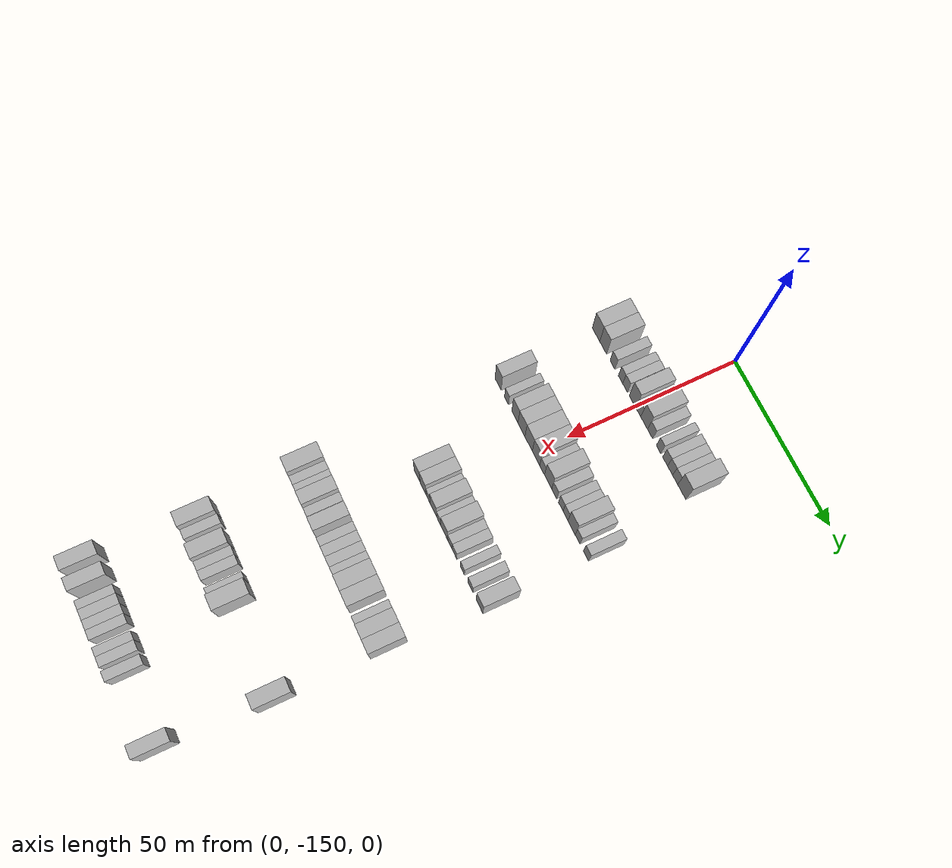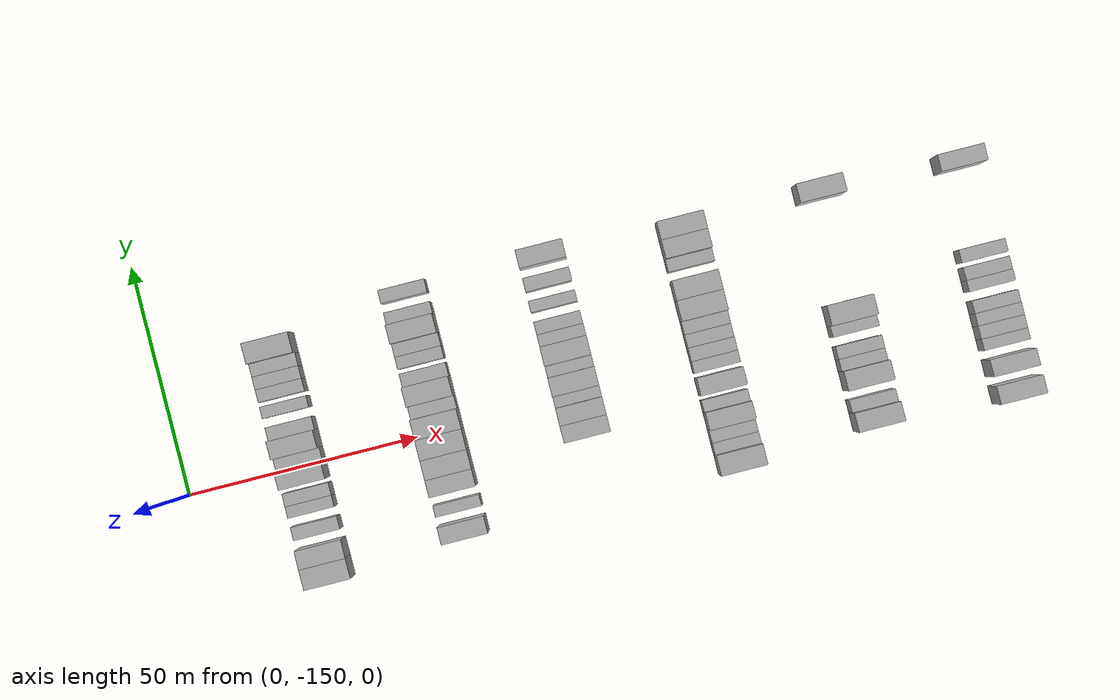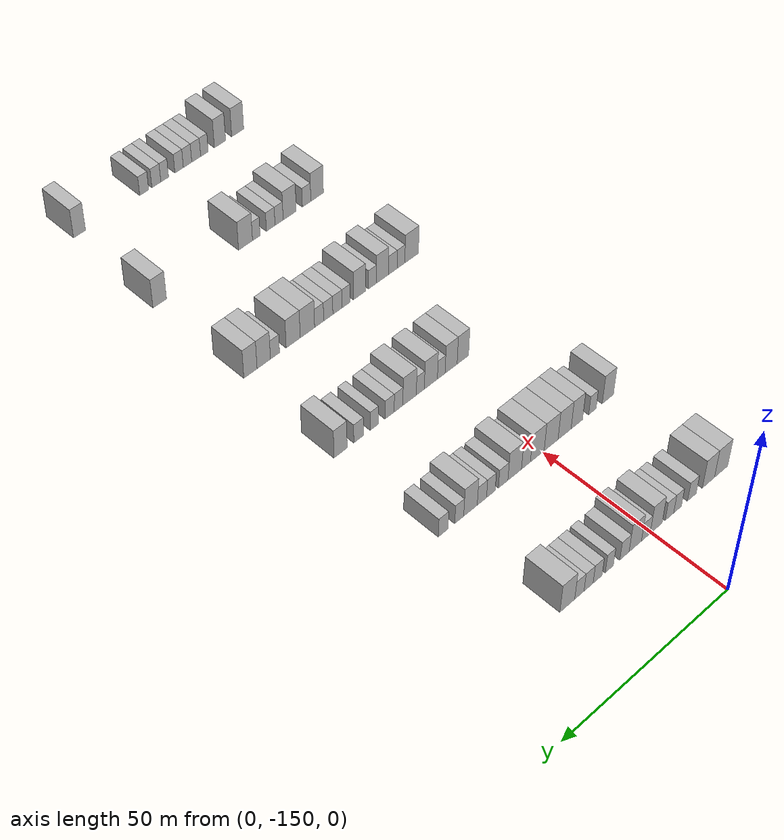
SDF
<sdf version="1.6">
 <world name="default">
  <model name="building_73">
   <static>1</static>
   <pose>25.0000 -172.6880 0 0.000000 0.000000 0.000000</pose>
   <link name="link">
    <pose>0 0 4.50 0 0 0</pose>
    <collision name="collision"><geometry><box><size>10.0000 4.4038 9.0000</size></box></geometry></collision>
    <visual name="visual">
     <cast_shadows>0</cast_shadows>
     <geometry><box><size>10.0000 4.4038 9.0000</size></box></geometry>
     <material>
      <script>
       <uri>model://HANNAS_wall/materials/scripts</uri>
       <uri>model://HANNAS_wall/materials/textures</uri>
       <name>vrc/HANNAS_wall</name>
      </script>
     </material>
    </visual>
   </link>
  </model>
  <model name="building_74">
   <static>1</static>
   <pose>25.0000 -168.4834 0 0.000000 0.000000 0.000000</pose>
   <link name="link">
    <pose>0 0 4.50 0 0 0</pose>
    <collision name="collision"><geometry><box><size>10.0000 4.0054 9.0000</size></box></geometry></collision>
    <visual name="visual">
     <cast_shadows>0</cast_shadows>
     <geometry><box><size>10.0000 4.0054 9.0000</size></box></geometry>
     <material>
      <script>
       <uri>model://HANNAS_wall/materials/scripts</uri>
       <uri>model://HANNAS_wall/materials/textures</uri>
       <name>vrc/HANNAS_wall</name>
      </script>
     </material>
    </visual>
   </link>
  </model>
  <model name="building_75">
   <static>1</static>
   <pose>25.0000 -163.0647 0 0.000000 0.000000 0.000000</pose>
   <link name="link">
    <pose>0 0 3.00 0 0 0</pose>
    <collision name="collision"><geometry><box><size>10.0000 2.8319 6.0000</size></box></geometry></collision>
    <visual name="visual">
     <cast_shadows>0</cast_shadows>
     <geometry><box><size>10.0000 2.8319 6.0000</size></box></geometry>
     <material>
      <script>
       <uri>model://HANNAS_wall/materials/scripts</uri>
       <uri>model://HANNAS_wall/materials/textures</uri>
       <name>vrc/HANNAS_wall</name>
      </script>
     </material>
    </visual>
   </link>
  </model>
  <model name="building_76">
   <static>1</static>
   <pose>25.0000 -158.3991 0 0.000000 0.000000 0.000000</pose>
   <link name="link">
    <pose>0 0 3.00 0 0 0</pose>
    <collision name="collision"><geometry><box><size>10.0000 2.4992 6.0000</size></box></geometry></collision>
    <visual name="visual">
     <cast_shadows>0</cast_shadows>
     <geometry><box><size>10.0000 2.4992 6.0000</size></box></geometry>
     <material>
      <script>
       <uri>model://HANNAS_wall/materials/scripts</uri>
       <uri>model://HANNAS_wall/materials/textures</uri>
       <name>vrc/HANNAS_wall</name>
      </script>
     </material>
    </visual>
   </link>
  </model>
  <model name="building_77">
   <static>1</static>
   <pose>25.0000 -155.7834 0 0.000000 0.000000 0.000000</pose>
   <link name="link">
    <pose>0 0 3.00 0 0 0</pose>
    <collision name="collision"><geometry><box><size>10.0000 2.7323 6.0000</size></box></geometry></collision>
    <visual name="visual">
     <cast_shadows>0</cast_shadows>
     <geometry><box><size>10.0000 2.7323 6.0000</size></box></geometry>
     <material>
      <script>
       <uri>model://HANNAS_wall/materials/scripts</uri>
       <uri>model://HANNAS_wall/materials/textures</uri>
       <name>vrc/HANNAS_wall</name>
      </script>
     </material>
    </visual>
   </link>
  </model>
  <model name="building_78">
   <static>1</static>
   <pose>25.0000 -151.5177 0 0.000000 0.000000 0.000000</pose>
   <link name="link">
    <pose>0 0 4.50 0 0 0</pose>
    <collision name="collision"><geometry><box><size>10.0000 3.7991 9.0000</size></box></geometry></collision>
    <visual name="visual">
     <cast_shadows>0</cast_shadows>
     <geometry><box><size>10.0000 3.7991 9.0000</size></box></geometry>
     <material>
      <script>
       <uri>model://HANNAS_wall/materials/scripts</uri>
       <uri>model://HANNAS_wall/materials/textures</uri>
       <name>vrc/HANNAS_wall</name>
      </script>
     </material>
    </visual>
   </link>
  </model>
  <model name="building_79">
   <static>1</static>
   <pose>25.0000 -148.2393 0 0.000000 0.000000 0.000000</pose>
   <link name="link">
    <pose>0 0 3.00 0 0 0</pose>
    <collision name="collision"><geometry><box><size>10.0000 2.7577 6.0000</size></box></geometry></collision>
    <visual name="visual">
     <cast_shadows>0</cast_shadows>
     <geometry><box><size>10.0000 2.7577 6.0000</size></box></geometry>
     <material>
      <script>
       <uri>model://HANNAS_wall/materials/scripts</uri>
       <uri>model://HANNAS_wall/materials/textures</uri>
       <name>vrc/HANNAS_wall</name>
      </script>
     </material>
    </visual>
   </link>
  </model>
  <model name="building_80">
   <static>1</static>
   <pose>25.0000 -144.9141 0 0.000000 0.000000 0.000000</pose>
   <link name="link">
    <pose>0 0 4.50 0 0 0</pose>
    <collision name="collision"><geometry><box><size>10.0000 3.8927 9.0000</size></box></geometry></collision>
    <visual name="visual">
     <cast_shadows>0</cast_shadows>
     <geometry><box><size>10.0000 3.8927 9.0000</size></box></geometry>
     <material>
      <script>
       <uri>model://HANNAS_wall/materials/scripts</uri>
       <uri>model://HANNAS_wall/materials/textures</uri>
       <name>vrc/HANNAS_wall</name>
      </script>
     </material>
    </visual>
   </link>
  </model>
  <model name="building_81">
   <static>1</static>
   <pose>25.0000 -141.5319 0 0.000000 0.000000 0.000000</pose>
   <link name="link">
    <pose>0 0 3.00 0 0 0</pose>
    <collision name="collision"><geometry><box><size>10.0000 2.8716 6.0000</size></box></geometry></collision>
    <visual name="visual">
     <cast_shadows>0</cast_shadows>
     <geometry><box><size>10.0000 2.8716 6.0000</size></box></geometry>
     <material>
      <script>
       <uri>model://HANNAS_wall/materials/scripts</uri>
       <uri>model://HANNAS_wall/materials/textures</uri>
       <name>vrc/HANNAS_wall</name>
      </script>
     </material>
    </visual>
   </link>
  </model>
  <model name="building_82">
   <static>1</static>
   <pose>25.0000 -136.8533 0 0.000000 0.000000 0.000000</pose>
   <link name="link">
    <pose>0 0 3.00 0 0 0</pose>
    <collision name="collision"><geometry><box><size>10.0000 2.4858 6.0000</size></box></geometry></collision>
    <visual name="visual">
     <cast_shadows>0</cast_shadows>
     <geometry><box><size>10.0000 2.4858 6.0000</size></box></geometry>
     <material>
      <script>
       <uri>model://HANNAS_wall/materials/scripts</uri>
       <uri>model://HANNAS_wall/materials/textures</uri>
       <name>vrc/HANNAS_wall</name>
      </script>
     </material>
    </visual>
   </link>
  </model>
  <model name="building_83">
   <static>1</static>
   <pose>25.0000 -133.2377 0 0.000000 0.000000 0.000000</pose>
   <link name="link">
    <pose>0 0 3.00 0 0 0</pose>
    <collision name="collision"><geometry><box><size>10.0000 2.7453 6.0000</size></box></geometry></collision>
    <visual name="visual">
     <cast_shadows>0</cast_shadows>
     <geometry><box><size>10.0000 2.7453 6.0000</size></box></geometry>
     <material>
      <script>
       <uri>model://HANNAS_wall/materials/scripts</uri>
       <uri>model://HANNAS_wall/materials/textures</uri>
       <name>vrc/HANNAS_wall</name>
      </script>
     </material>
    </visual>
   </link>
  </model>
  <model name="building_84">
   <static>1</static>
   <pose>25.0000 -130.4883 0 0.000000 0.000000 0.000000</pose>
   <link name="link">
    <pose>0 0 3.00 0 0 0</pose>
    <collision name="collision"><geometry><box><size>10.0000 2.7537 6.0000</size></box></geometry></collision>
    <visual name="visual">
     <cast_shadows>0</cast_shadows>
     <geometry><box><size>10.0000 2.7537 6.0000</size></box></geometry>
     <material>
      <script>
       <uri>model://HANNAS_wall/materials/scripts</uri>
       <uri>model://HANNAS_wall/materials/textures</uri>
       <name>vrc/HANNAS_wall</name>
      </script>
     </material>
    </visual>
   </link>
  </model>
  <model name="building_85">
   <static>1</static>
   <pose>25.0000 -127.7091 0 0.000000 0.000000 0.000000</pose>
   <link name="link">
    <pose>0 0 3.00 0 0 0</pose>
    <collision name="collision"><geometry><box><size>10.0000 2.8045 6.0000</size></box></geometry></collision>
    <visual name="visual">
     <cast_shadows>0</cast_shadows>
     <geometry><box><size>10.0000 2.8045 6.0000</size></box></geometry>
     <material>
      <script>
       <uri>model://HANNAS_wall/materials/scripts</uri>
       <uri>model://HANNAS_wall/materials/textures</uri>
       <name>vrc/HANNAS_wall</name>
      </script>
     </material>
    </visual>
   </link>
  </model>
  <model name="building_86">
   <static>1</static>
   <pose>25.0000 -124.0946 0 0.000000 0.000000 0.000000</pose>
   <link name="link">
    <pose>0 0 4.50 0 0 0</pose>
    <collision name="collision"><geometry><box><size>10.0000 4.4244 9.0000</size></box></geometry></collision>
    <visual name="visual">
     <cast_shadows>0</cast_shadows>
     <geometry><box><size>10.0000 4.4244 9.0000</size></box></geometry>
     <material>
      <script>
       <uri>model://HANNAS_wall/materials/scripts</uri>
       <uri>model://HANNAS_wall/materials/textures</uri>
       <name>vrc/HANNAS_wall</name>
      </script>
     </material>
    </visual>
   </link>
  </model>
  <model name="building_297">
   <static>1</static>
   <pose>55.0000 -170.9384 0 0.000000 0.000000 0.000000</pose>
   <link name="link">
    <pose>0 0 4.50 0 0 0</pose>
    <collision name="collision"><geometry><box><size>10.0000 3.7068 9.0000</size></box></geometry></collision>
    <visual name="visual">
     <cast_shadows>0</cast_shadows>
     <geometry><box><size>10.0000 3.7068 9.0000</size></box></geometry>
     <material>
      <script>
       <uri>model://HANNAS_wall/materials/scripts</uri>
       <uri>model://HANNAS_wall/materials/textures</uri>
       <name>vrc/HANNAS_wall</name>
      </script>
     </material>
    </visual>
   </link>
  </model>
  <model name="building_298">
   <static>1</static>
   <pose>55.0000 -165.8713 0 0.000000 0.000000 0.000000</pose>
   <link name="link">
    <pose>0 0 3.00 0 0 0</pose>
    <collision name="collision"><geometry><box><size>10.0000 2.4275 6.0000</size></box></geometry></collision>
    <visual name="visual">
     <cast_shadows>0</cast_shadows>
     <geometry><box><size>10.0000 2.4275 6.0000</size></box></geometry>
     <material>
      <script>
       <uri>model://HANNAS_wall/materials/scripts</uri>
       <uri>model://HANNAS_wall/materials/textures</uri>
       <name>vrc/HANNAS_wall</name>
      </script>
     </material>
    </visual>
   </link>
  </model>
  <model name="building_299">
   <static>1</static>
   <pose>55.0000 -160.8101 0 0.000000 0.000000 0.000000</pose>
   <link name="link">
    <pose>0 0 4.50 0 0 0</pose>
    <collision name="collision"><geometry><box><size>10.0000 3.6948 9.0000</size></box></geometry></collision>
    <visual name="visual">
     <cast_shadows>0</cast_shadows>
     <geometry><box><size>10.0000 3.6948 9.0000</size></box></geometry>
     <material>
      <script>
       <uri>model://HANNAS_wall/materials/scripts</uri>
       <uri>model://HANNAS_wall/materials/textures</uri>
       <name>vrc/HANNAS_wall</name>
      </script>
     </material>
    </visual>
   </link>
  </model>
  <model name="building_300">
   <static>1</static>
   <pose>55.0000 -156.8668 0 0.000000 0.000000 0.000000</pose>
   <link name="link">
    <pose>0 0 4.50 0 0 0</pose>
    <collision name="collision"><geometry><box><size>10.0000 4.1919 9.0000</size></box></geometry></collision>
    <visual name="visual">
     <cast_shadows>0</cast_shadows>
     <geometry><box><size>10.0000 4.1919 9.0000</size></box></geometry>
     <material>
      <script>
       <uri>model://HANNAS_wall/materials/scripts</uri>
       <uri>model://HANNAS_wall/materials/textures</uri>
       <name>vrc/HANNAS_wall</name>
      </script>
     </material>
    </visual>
   </link>
  </model>
  <model name="building_301">
   <static>1</static>
   <pose>55.0000 -152.5735 0 0.000000 0.000000 0.000000</pose>
   <link name="link">
    <pose>0 0 4.50 0 0 0</pose>
    <collision name="collision"><geometry><box><size>10.0000 4.3947 9.0000</size></box></geometry></collision>
    <visual name="visual">
     <cast_shadows>0</cast_shadows>
     <geometry><box><size>10.0000 4.3947 9.0000</size></box></geometry>
     <material>
      <script>
       <uri>model://HANNAS_wall/materials/scripts</uri>
       <uri>model://HANNAS_wall/materials/textures</uri>
       <name>vrc/HANNAS_wall</name>
      </script>
     </material>
    </visual>
   </link>
  </model>
  <model name="building_302">
   <static>1</static>
   <pose>55.0000 -148.2005 0 0.000000 0.000000 0.000000</pose>
   <link name="link">
    <pose>0 0 4.50 0 0 0</pose>
    <collision name="collision"><geometry><box><size>10.0000 4.3514 9.0000</size></box></geometry></collision>
    <visual name="visual">
     <cast_shadows>0</cast_shadows>
     <geometry><box><size>10.0000 4.3514 9.0000</size></box></geometry>
     <material>
      <script>
       <uri>model://HANNAS_wall/materials/scripts</uri>
       <uri>model://HANNAS_wall/materials/textures</uri>
       <name>vrc/HANNAS_wall</name>
      </script>
     </material>
    </visual>
   </link>
  </model>
  <model name="building_303">
   <static>1</static>
   <pose>55.0000 -144.6374 0 0.000000 0.000000 0.000000</pose>
   <link name="link">
    <pose>0 0 3.00 0 0 0</pose>
    <collision name="collision"><geometry><box><size>10.0000 2.7748 6.0000</size></box></geometry></collision>
    <visual name="visual">
     <cast_shadows>0</cast_shadows>
     <geometry><box><size>10.0000 2.7748 6.0000</size></box></geometry>
     <material>
      <script>
       <uri>model://HANNAS_wall/materials/scripts</uri>
       <uri>model://HANNAS_wall/materials/textures</uri>
       <name>vrc/HANNAS_wall</name>
      </script>
     </material>
    </visual>
   </link>
  </model>
  <model name="building_304">
   <static>1</static>
   <pose>55.0000 -141.1424 0 0.000000 0.000000 0.000000</pose>
   <link name="link">
    <pose>0 0 4.50 0 0 0</pose>
    <collision name="collision"><geometry><box><size>10.0000 4.2152 9.0000</size></box></geometry></collision>
    <visual name="visual">
     <cast_shadows>0</cast_shadows>
     <geometry><box><size>10.0000 4.2152 9.0000</size></box></geometry>
     <material>
      <script>
       <uri>model://HANNAS_wall/materials/scripts</uri>
       <uri>model://HANNAS_wall/materials/textures</uri>
       <name>vrc/HANNAS_wall</name>
      </script>
     </material>
    </visual>
   </link>
  </model>
  <model name="building_305">
   <static>1</static>
   <pose>55.0000 -137.5801 0 0.000000 0.000000 0.000000</pose>
   <link name="link">
    <pose>0 0 3.00 0 0 0</pose>
    <collision name="collision"><geometry><box><size>10.0000 2.9094 6.0000</size></box></geometry></collision>
    <visual name="visual">
     <cast_shadows>0</cast_shadows>
     <geometry><box><size>10.0000 2.9094 6.0000</size></box></geometry>
     <material>
      <script>
       <uri>model://HANNAS_wall/materials/scripts</uri>
       <uri>model://HANNAS_wall/materials/textures</uri>
       <name>vrc/HANNAS_wall</name>
      </script>
     </material>
    </visual>
   </link>
  </model>
  <model name="building_306">
   <static>1</static>
   <pose>55.0000 -133.8088 0 0.000000 0.000000 0.000000</pose>
   <link name="link">
    <pose>0 0 3.00 0 0 0</pose>
    <collision name="collision"><geometry><box><size>10.0000 2.6331 6.0000</size></box></geometry></collision>
    <visual name="visual">
     <cast_shadows>0</cast_shadows>
     <geometry><box><size>10.0000 2.6331 6.0000</size></box></geometry>
     <material>
      <script>
       <uri>model://HANNAS_wall/materials/scripts</uri>
       <uri>model://HANNAS_wall/materials/textures</uri>
       <name>vrc/HANNAS_wall</name>
      </script>
     </material>
    </visual>
   </link>
  </model>
  <model name="building_307">
   <static>1</static>
   <pose>55.0000 -131.0828 0 0.000000 0.000000 0.000000</pose>
   <link name="link">
    <pose>0 0 3.00 0 0 0</pose>
    <collision name="collision"><geometry><box><size>10.0000 2.8191 6.0000</size></box></geometry></collision>
    <visual name="visual">
     <cast_shadows>0</cast_shadows>
     <geometry><box><size>10.0000 2.8191 6.0000</size></box></geometry>
     <material>
      <script>
       <uri>model://HANNAS_wall/materials/scripts</uri>
       <uri>model://HANNAS_wall/materials/textures</uri>
       <name>vrc/HANNAS_wall</name>
      </script>
     </material>
    </visual>
   </link>
  </model>
  <model name="building_308">
   <static>1</static>
   <pose>55.0000 -127.6344 0 0.000000 0.000000 0.000000</pose>
   <link name="link">
    <pose>0 0 4.50 0 0 0</pose>
    <collision name="collision"><geometry><box><size>10.0000 4.0777 9.0000</size></box></geometry></collision>
    <visual name="visual">
     <cast_shadows>0</cast_shadows>
     <geometry><box><size>10.0000 4.0777 9.0000</size></box></geometry>
     <material>
      <script>
       <uri>model://HANNAS_wall/materials/scripts</uri>
       <uri>model://HANNAS_wall/materials/textures</uri>
       <name>vrc/HANNAS_wall</name>
      </script>
     </material>
    </visual>
   </link>
  </model>
  <model name="building_309">
   <static>1</static>
   <pose>55.0000 -124.2553 0 0.000000 0.000000 0.000000</pose>
   <link name="link">
    <pose>0 0 3.00 0 0 0</pose>
    <collision name="collision"><geometry><box><size>10.0000 2.6804 6.0000</size></box></geometry></collision>
    <visual name="visual">
     <cast_shadows>0</cast_shadows>
     <geometry><box><size>10.0000 2.6804 6.0000</size></box></geometry>
     <material>
      <script>
       <uri>model://HANNAS_wall/materials/scripts</uri>
       <uri>model://HANNAS_wall/materials/textures</uri>
       <name>vrc/HANNAS_wall</name>
      </script>
     </material>
    </visual>
   </link>
  </model>
  <model name="building_310">
   <static>1</static>
   <pose>55.0000 -119.4804 0 0.000000 0.000000 0.000000</pose>
   <link name="link">
    <pose>0 0 3.00 0 0 0</pose>
    <collision name="collision"><geometry><box><size>10.0000 2.8694 6.0000</size></box></geometry></collision>
    <visual name="visual">
     <cast_shadows>0</cast_shadows>
     <geometry><box><size>10.0000 2.8694 6.0000</size></box></geometry>
     <material>
      <script>
       <uri>model://HANNAS_wall/materials/scripts</uri>
       <uri>model://HANNAS_wall/materials/textures</uri>
       <name>vrc/HANNAS_wall</name>
      </script>
     </material>
    </visual>
   </link>
  </model>
  <model name="building_536">
   <static>1</static>
   <pose>85.0000 -156.7887 0 0.000000 0.000000 0.000000</pose>
   <link name="link">
    <pose>0 0 4.50 0 0 0</pose>
    <collision name="collision"><geometry><box><size>10.0000 3.6500 9.0000</size></box></geometry></collision>
    <visual name="visual">
     <cast_shadows>0</cast_shadows>
     <geometry><box><size>10.0000 3.6500 9.0000</size></box></geometry>
     <material>
      <script>
       <uri>model://HANNAS_wall/materials/scripts</uri>
       <uri>model://HANNAS_wall/materials/textures</uri>
       <name>vrc/HANNAS_wall</name>
      </script>
     </material>
    </visual>
   </link>
  </model>
  <model name="building_537">
   <static>1</static>
   <pose>85.0000 -153.0560 0 0.000000 0.000000 0.000000</pose>
   <link name="link">
    <pose>0 0 4.50 0 0 0</pose>
    <collision name="collision"><geometry><box><size>10.0000 3.8153 9.0000</size></box></geometry></collision>
    <visual name="visual">
     <cast_shadows>0</cast_shadows>
     <geometry><box><size>10.0000 3.8153 9.0000</size></box></geometry>
     <material>
      <script>
       <uri>model://HANNAS_wall/materials/scripts</uri>
       <uri>model://HANNAS_wall/materials/textures</uri>
       <name>vrc/HANNAS_wall</name>
      </script>
     </material>
    </visual>
   </link>
  </model>
  <model name="building_538">
   <static>1</static>
   <pose>85.0000 -149.9381 0 0.000000 0.000000 0.000000</pose>
   <link name="link">
    <pose>0 0 3.00 0 0 0</pose>
    <collision name="collision"><geometry><box><size>10.0000 2.4205 6.0000</size></box></geometry></collision>
    <visual name="visual">
     <cast_shadows>0</cast_shadows>
     <geometry><box><size>10.0000 2.4205 6.0000</size></box></geometry>
     <material>
      <script>
       <uri>model://HANNAS_wall/materials/scripts</uri>
       <uri>model://HANNAS_wall/materials/textures</uri>
       <name>vrc/HANNAS_wall</name>
      </script>
     </material>
    </visual>
   </link>
  </model>
  <model name="building_539">
   <static>1</static>
   <pose>85.0000 -146.6838 0 0.000000 0.000000 0.000000</pose>
   <link name="link">
    <pose>0 0 4.50 0 0 0</pose>
    <collision name="collision"><geometry><box><size>10.0000 4.0880 9.0000</size></box></geometry></collision>
    <visual name="visual">
     <cast_shadows>0</cast_shadows>
     <geometry><box><size>10.0000 4.0880 9.0000</size></box></geometry>
     <material>
      <script>
       <uri>model://HANNAS_wall/materials/scripts</uri>
       <uri>model://HANNAS_wall/materials/textures</uri>
       <name>vrc/HANNAS_wall</name>
      </script>
     </material>
    </visual>
   </link>
  </model>
  <model name="building_540">
   <static>1</static>
   <pose>85.0000 -143.3901 0 0.000000 0.000000 0.000000</pose>
   <link name="link">
    <pose>0 0 3.00 0 0 0</pose>
    <collision name="collision"><geometry><box><size>10.0000 2.4994 6.0000</size></box></geometry></collision>
    <visual name="visual">
     <cast_shadows>0</cast_shadows>
     <geometry><box><size>10.0000 2.4994 6.0000</size></box></geometry>
     <material>
      <script>
       <uri>model://HANNAS_wall/materials/scripts</uri>
       <uri>model://HANNAS_wall/materials/textures</uri>
       <name>vrc/HANNAS_wall</name>
      </script>
     </material>
    </visual>
   </link>
  </model>
  <model name="building_541">
   <static>1</static>
   <pose>85.0000 -140.0572 0 0.000000 0.000000 0.000000</pose>
   <link name="link">
    <pose>0 0 4.50 0 0 0</pose>
    <collision name="collision"><geometry><box><size>10.0000 4.1663 9.0000</size></box></geometry></collision>
    <visual name="visual">
     <cast_shadows>0</cast_shadows>
     <geometry><box><size>10.0000 4.1663 9.0000</size></box></geometry>
     <material>
      <script>
       <uri>model://HANNAS_wall/materials/scripts</uri>
       <uri>model://HANNAS_wall/materials/textures</uri>
       <name>vrc/HANNAS_wall</name>
      </script>
     </material>
    </visual>
   </link>
  </model>
  <model name="building_542">
   <static>1</static>
   <pose>85.0000 -136.6479 0 0.000000 0.000000 0.000000</pose>
   <link name="link">
    <pose>0 0 3.00 0 0 0</pose>
    <collision name="collision"><geometry><box><size>10.0000 2.6523 6.0000</size></box></geometry></collision>
    <visual name="visual">
     <cast_shadows>0</cast_shadows>
     <geometry><box><size>10.0000 2.6523 6.0000</size></box></geometry>
     <material>
      <script>
       <uri>model://HANNAS_wall/materials/scripts</uri>
       <uri>model://HANNAS_wall/materials/textures</uri>
       <name>vrc/HANNAS_wall</name>
      </script>
     </material>
    </visual>
   </link>
  </model>
  <model name="building_543">
   <static>1</static>
   <pose>85.0000 -133.9329 0 0.000000 0.000000 0.000000</pose>
   <link name="link">
    <pose>0 0 3.00 0 0 0</pose>
    <collision name="collision"><geometry><box><size>10.0000 2.7778 6.0000</size></box></geometry></collision>
    <visual name="visual">
     <cast_shadows>0</cast_shadows>
     <geometry><box><size>10.0000 2.7778 6.0000</size></box></geometry>
     <material>
      <script>
       <uri>model://HANNAS_wall/materials/scripts</uri>
       <uri>model://HANNAS_wall/materials/textures</uri>
       <name>vrc/HANNAS_wall</name>
      </script>
     </material>
    </visual>
   </link>
  </model>
  <model name="building_544">
   <static>1</static>
   <pose>85.0000 -129.3029 0 0.000000 0.000000 0.000000</pose>
   <link name="link">
    <pose>0 0 3.00 0 0 0</pose>
    <collision name="collision"><geometry><box><size>10.0000 2.4823 6.0000</size></box></geometry></collision>
    <visual name="visual">
     <cast_shadows>0</cast_shadows>
     <geometry><box><size>10.0000 2.4823 6.0000</size></box></geometry>
     <material>
      <script>
       <uri>model://HANNAS_wall/materials/scripts</uri>
       <uri>model://HANNAS_wall/materials/textures</uri>
       <name>vrc/HANNAS_wall</name>
      </script>
     </material>
    </visual>
   </link>
  </model>
  <model name="building_545">
   <static>1</static>
   <pose>85.0000 -124.5940 0 0.000000 0.000000 0.000000</pose>
   <link name="link">
    <pose>0 0 3.00 0 0 0</pose>
    <collision name="collision"><geometry><box><size>10.0000 2.9353 6.0000</size></box></geometry></collision>
    <visual name="visual">
     <cast_shadows>0</cast_shadows>
     <geometry><box><size>10.0000 2.9353 6.0000</size></box></geometry>
     <material>
      <script>
       <uri>model://HANNAS_wall/materials/scripts</uri>
       <uri>model://HANNAS_wall/materials/textures</uri>
       <name>vrc/HANNAS_wall</name>
      </script>
     </material>
    </visual>
   </link>
  </model>
  <model name="building_546">
   <static>1</static>
   <pose>85.0000 -119.1725 0 0.000000 0.000000 0.000000</pose>
   <link name="link">
    <pose>0 0 4.50 0 0 0</pose>
    <collision name="collision"><geometry><box><size>10.0000 3.9077 9.0000</size></box></geometry></collision>
    <visual name="visual">
     <cast_shadows>0</cast_shadows>
     <geometry><box><size>10.0000 3.9077 9.0000</size></box></geometry>
     <material>
      <script>
       <uri>model://HANNAS_wall/materials/scripts</uri>
       <uri>model://HANNAS_wall/materials/textures</uri>
       <name>vrc/HANNAS_wall</name>
      </script>
     </material>
    </visual>
   </link>
  </model>
  <model name="building_758">
   <static>1</static>
   <pose>115.0000 -171.1451 0 0.000000 0.000000 0.000000</pose>
   <link name="link">
    <pose>0 0 4.50 0 0 0</pose>
    <collision name="collision"><geometry><box><size>10.0000 4.4587 9.0000</size></box></geometry></collision>
    <visual name="visual">
     <cast_shadows>0</cast_shadows>
     <geometry><box><size>10.0000 4.4587 9.0000</size></box></geometry>
     <material>
      <script>
       <uri>model://HANNAS_wall/materials/scripts</uri>
       <uri>model://HANNAS_wall/materials/textures</uri>
       <name>vrc/HANNAS_wall</name>
      </script>
     </material>
    </visual>
   </link>
  </model>
  <model name="building_759">
   <static>1</static>
   <pose>115.0000 -167.6569 0 0.000000 0.000000 0.000000</pose>
   <link name="link">
    <pose>0 0 3.00 0 0 0</pose>
    <collision name="collision"><geometry><box><size>10.0000 2.5176 6.0000</size></box></geometry></collision>
    <visual name="visual">
     <cast_shadows>0</cast_shadows>
     <geometry><box><size>10.0000 2.5176 6.0000</size></box></geometry>
     <material>
      <script>
       <uri>model://HANNAS_wall/materials/scripts</uri>
       <uri>model://HANNAS_wall/materials/textures</uri>
       <name>vrc/HANNAS_wall</name>
      </script>
     </material>
    </visual>
   </link>
  </model>
  <model name="building_760">
   <static>1</static>
   <pose>115.0000 -165.0021 0 0.000000 0.000000 0.000000</pose>
   <link name="link">
    <pose>0 0 3.00 0 0 0</pose>
    <collision name="collision"><geometry><box><size>10.0000 2.7920 6.0000</size></box></geometry></collision>
    <visual name="visual">
     <cast_shadows>0</cast_shadows>
     <geometry><box><size>10.0000 2.7920 6.0000</size></box></geometry>
     <material>
      <script>
       <uri>model://HANNAS_wall/materials/scripts</uri>
       <uri>model://HANNAS_wall/materials/textures</uri>
       <name>vrc/HANNAS_wall</name>
      </script>
     </material>
    </visual>
   </link>
  </model>
  <model name="building_761">
   <static>1</static>
   <pose>115.0000 -161.6677 0 0.000000 0.000000 0.000000</pose>
   <link name="link">
    <pose>0 0 4.50 0 0 0</pose>
    <collision name="collision"><geometry><box><size>10.0000 3.8769 9.0000</size></box></geometry></collision>
    <visual name="visual">
     <cast_shadows>0</cast_shadows>
     <geometry><box><size>10.0000 3.8769 9.0000</size></box></geometry>
     <material>
      <script>
       <uri>model://HANNAS_wall/materials/scripts</uri>
       <uri>model://HANNAS_wall/materials/textures</uri>
       <name>vrc/HANNAS_wall</name>
      </script>
     </material>
    </visual>
   </link>
  </model>
  <model name="building_762">
   <static>1</static>
   <pose>115.0000 -158.4520 0 0.000000 0.000000 0.000000</pose>
   <link name="link">
    <pose>0 0 3.00 0 0 0</pose>
    <collision name="collision"><geometry><box><size>10.0000 2.5543 6.0000</size></box></geometry></collision>
    <visual name="visual">
     <cast_shadows>0</cast_shadows>
     <geometry><box><size>10.0000 2.5543 6.0000</size></box></geometry>
     <material>
      <script>
       <uri>model://HANNAS_wall/materials/scripts</uri>
       <uri>model://HANNAS_wall/materials/textures</uri>
       <name>vrc/HANNAS_wall</name>
      </script>
     </material>
    </visual>
   </link>
  </model>
  <model name="building_763">
   <static>1</static>
   <pose>115.0000 -154.2518 0 0.000000 0.000000 0.000000</pose>
   <link name="link">
    <pose>0 0 4.50 0 0 0</pose>
    <collision name="collision"><geometry><box><size>10.0000 3.8462 9.0000</size></box></geometry></collision>
    <visual name="visual">
     <cast_shadows>0</cast_shadows>
     <geometry><box><size>10.0000 3.8462 9.0000</size></box></geometry>
     <material>
      <script>
       <uri>model://HANNAS_wall/materials/scripts</uri>
       <uri>model://HANNAS_wall/materials/textures</uri>
       <name>vrc/HANNAS_wall</name>
      </script>
     </material>
    </visual>
   </link>
  </model>
  <model name="building_764">
   <static>1</static>
   <pose>115.0000 -150.0552 0 0.000000 0.000000 0.000000</pose>
   <link name="link">
    <pose>0 0 3.00 0 0 0</pose>
    <collision name="collision"><geometry><box><size>10.0000 2.5469 6.0000</size></box></geometry></collision>
    <visual name="visual">
     <cast_shadows>0</cast_shadows>
     <geometry><box><size>10.0000 2.5469 6.0000</size></box></geometry>
     <material>
      <script>
       <uri>model://HANNAS_wall/materials/scripts</uri>
       <uri>model://HANNAS_wall/materials/textures</uri>
       <name>vrc/HANNAS_wall</name>
      </script>
     </material>
    </visual>
   </link>
  </model>
  <model name="building_765">
   <static>1</static>
   <pose>115.0000 -147.3189 0 0.000000 0.000000 0.000000</pose>
   <link name="link">
    <pose>0 0 3.00 0 0 0</pose>
    <collision name="collision"><geometry><box><size>10.0000 2.9257 6.0000</size></box></geometry></collision>
    <visual name="visual">
     <cast_shadows>0</cast_shadows>
     <geometry><box><size>10.0000 2.9257 6.0000</size></box></geometry>
     <material>
      <script>
       <uri>model://HANNAS_wall/materials/scripts</uri>
       <uri>model://HANNAS_wall/materials/textures</uri>
       <name>vrc/HANNAS_wall</name>
      </script>
     </material>
    </visual>
   </link>
  </model>
  <model name="building_766">
   <static>1</static>
   <pose>115.0000 -144.4164 0 0.000000 0.000000 0.000000</pose>
   <link name="link">
    <pose>0 0 3.00 0 0 0</pose>
    <collision name="collision"><geometry><box><size>10.0000 2.8793 6.0000</size></box></geometry></collision>
    <visual name="visual">
     <cast_shadows>0</cast_shadows>
     <geometry><box><size>10.0000 2.8793 6.0000</size></box></geometry>
     <material>
      <script>
       <uri>model://HANNAS_wall/materials/scripts</uri>
       <uri>model://HANNAS_wall/materials/textures</uri>
       <name>vrc/HANNAS_wall</name>
      </script>
     </material>
    </visual>
   </link>
  </model>
  <model name="building_767">
   <static>1</static>
   <pose>115.0000 -141.5778 0 0.000000 0.000000 0.000000</pose>
   <link name="link">
    <pose>0 0 3.00 0 0 0</pose>
    <collision name="collision"><geometry><box><size>10.0000 2.7979 6.0000</size></box></geometry></collision>
    <visual name="visual">
     <cast_shadows>0</cast_shadows>
     <geometry><box><size>10.0000 2.7979 6.0000</size></box></geometry>
     <material>
      <script>
       <uri>model://HANNAS_wall/materials/scripts</uri>
       <uri>model://HANNAS_wall/materials/textures</uri>
       <name>vrc/HANNAS_wall</name>
      </script>
     </material>
    </visual>
   </link>
  </model>
  <model name="building_768">
   <static>1</static>
   <pose>115.0000 -137.9564 0 0.000000 0.000000 0.000000</pose>
   <link name="link">
    <pose>0 0 4.50 0 0 0</pose>
    <collision name="collision"><geometry><box><size>10.0000 4.4451 9.0000</size></box></geometry></collision>
    <visual name="visual">
     <cast_shadows>0</cast_shadows>
     <geometry><box><size>10.0000 4.4451 9.0000</size></box></geometry>
     <material>
      <script>
       <uri>model://HANNAS_wall/materials/scripts</uri>
       <uri>model://HANNAS_wall/materials/textures</uri>
       <name>vrc/HANNAS_wall</name>
      </script>
     </material>
    </visual>
   </link>
  </model>
  <model name="building_769">
   <static>1</static>
   <pose>115.0000 -133.5924 0 0.000000 0.000000 0.000000</pose>
   <link name="link">
    <pose>0 0 4.50 0 0 0</pose>
    <collision name="collision"><geometry><box><size>10.0000 4.2830 9.0000</size></box></geometry></collision>
    <visual name="visual">
     <cast_shadows>0</cast_shadows>
     <geometry><box><size>10.0000 4.2830 9.0000</size></box></geometry>
     <material>
      <script>
       <uri>model://HANNAS_wall/materials/scripts</uri>
       <uri>model://HANNAS_wall/materials/textures</uri>
       <name>vrc/HANNAS_wall</name>
      </script>
     </material>
    </visual>
   </link>
  </model>
  <model name="building_770">
   <static>1</static>
   <pose>115.0000 -128.0778 0 0.000000 0.000000 0.000000</pose>
   <link name="link">
    <pose>0 0 3.00 0 0 0</pose>
    <collision name="collision"><geometry><box><size>10.0000 2.7462 6.0000</size></box></geometry></collision>
    <visual name="visual">
     <cast_shadows>0</cast_shadows>
     <geometry><box><size>10.0000 2.7462 6.0000</size></box></geometry>
     <material>
      <script>
       <uri>model://HANNAS_wall/materials/scripts</uri>
       <uri>model://HANNAS_wall/materials/textures</uri>
       <name>vrc/HANNAS_wall</name>
      </script>
     </material>
    </visual>
   </link>
  </model>
  <model name="building_771">
   <static>1</static>
   <pose>115.0000 -124.7013 0 0.000000 0.000000 0.000000</pose>
   <link name="link">
    <pose>0 0 4.50 0 0 0</pose>
    <collision name="collision"><geometry><box><size>10.0000 4.0068 9.0000</size></box></geometry></collision>
    <visual name="visual">
     <cast_shadows>0</cast_shadows>
     <geometry><box><size>10.0000 4.0068 9.0000</size></box></geometry>
     <material>
      <script>
       <uri>model://HANNAS_wall/materials/scripts</uri>
       <uri>model://HANNAS_wall/materials/textures</uri>
       <name>vrc/HANNAS_wall</name>
      </script>
     </material>
    </visual>
   </link>
  </model>
  <model name="building_772">
   <static>1</static>
   <pose>115.0000 -120.7252 0 0.000000 0.000000 0.000000</pose>
   <link name="link">
    <pose>0 0 4.50 0 0 0</pose>
    <collision name="collision"><geometry><box><size>10.0000 3.9455 9.0000</size></box></geometry></collision>
    <visual name="visual">
     <cast_shadows>0</cast_shadows>
     <geometry><box><size>10.0000 3.9455 9.0000</size></box></geometry>
     <material>
      <script>
       <uri>model://HANNAS_wall/materials/scripts</uri>
       <uri>model://HANNAS_wall/materials/textures</uri>
       <name>vrc/HANNAS_wall</name>
      </script>
     </material>
    </visual>
   </link>
  </model>
  <model name="building_988">
   <static>1</static>
   <pose>145.0000 -169.5936 0 0.000000 0.000000 0.000000</pose>
   <link name="link">
    <pose>0 0 4.50 0 0 0</pose>
    <collision name="collision"><geometry><box><size>10.0000 4.1394 9.0000</size></box></geometry></collision>
    <visual name="visual">
     <cast_shadows>0</cast_shadows>
     <geometry><box><size>10.0000 4.1394 9.0000</size></box></geometry>
     <material>
      <script>
       <uri>model://HANNAS_wall/materials/scripts</uri>
       <uri>model://HANNAS_wall/materials/textures</uri>
       <name>vrc/HANNAS_wall</name>
      </script>
     </material>
    </visual>
   </link>
  </model>
  <model name="building_989">
   <static>1</static>
   <pose>145.0000 -166.1538 0 0.000000 0.000000 0.000000</pose>
   <link name="link">
    <pose>0 0 3.00 0 0 0</pose>
    <collision name="collision"><geometry><box><size>10.0000 2.7402 6.0000</size></box></geometry></collision>
    <visual name="visual">
     <cast_shadows>0</cast_shadows>
     <geometry><box><size>10.0000 2.7402 6.0000</size></box></geometry>
     <material>
      <script>
       <uri>model://HANNAS_wall/materials/scripts</uri>
       <uri>model://HANNAS_wall/materials/textures</uri>
       <name>vrc/HANNAS_wall</name>
      </script>
     </material>
    </visual>
   </link>
  </model>
  <model name="building_990">
   <static>1</static>
   <pose>145.0000 -160.6723 0 0.000000 0.000000 0.000000</pose>
   <link name="link">
    <pose>0 0 4.50 0 0 0</pose>
    <collision name="collision"><geometry><box><size>10.0000 4.2229 9.0000</size></box></geometry></collision>
    <visual name="visual">
     <cast_shadows>0</cast_shadows>
     <geometry><box><size>10.0000 4.2229 9.0000</size></box></geometry>
     <material>
      <script>
       <uri>model://HANNAS_wall/materials/scripts</uri>
       <uri>model://HANNAS_wall/materials/textures</uri>
       <name>vrc/HANNAS_wall</name>
      </script>
     </material>
    </visual>
   </link>
  </model>
  <model name="building_991">
   <static>1</static>
   <pose>145.0000 -157.2592 0 0.000000 0.000000 0.000000</pose>
   <link name="link">
    <pose>0 0 3.00 0 0 0</pose>
    <collision name="collision"><geometry><box><size>10.0000 2.6032 6.0000</size></box></geometry></collision>
    <visual name="visual">
     <cast_shadows>0</cast_shadows>
     <geometry><box><size>10.0000 2.6032 6.0000</size></box></geometry>
     <material>
      <script>
       <uri>model://HANNAS_wall/materials/scripts</uri>
       <uri>model://HANNAS_wall/materials/textures</uri>
       <name>vrc/HANNAS_wall</name>
      </script>
     </material>
    </visual>
   </link>
  </model>
  <model name="building_992">
   <static>1</static>
   <pose>145.0000 -154.5837 0 0.000000 0.000000 0.000000</pose>
   <link name="link">
    <pose>0 0 3.00 0 0 0</pose>
    <collision name="collision"><geometry><box><size>10.0000 2.7478 6.0000</size></box></geometry></collision>
    <visual name="visual">
     <cast_shadows>0</cast_shadows>
     <geometry><box><size>10.0000 2.7478 6.0000</size></box></geometry>
     <material>
      <script>
       <uri>model://HANNAS_wall/materials/scripts</uri>
       <uri>model://HANNAS_wall/materials/textures</uri>
       <name>vrc/HANNAS_wall</name>
      </script>
     </material>
    </visual>
   </link>
  </model>
  <model name="building_993">
   <static>1</static>
   <pose>145.0000 -150.0098 0 0.000000 0.000000 0.000000</pose>
   <link name="link">
    <pose>0 0 3.00 0 0 0</pose>
    <collision name="collision"><geometry><box><size>10.0000 2.4000 6.0000</size></box></geometry></collision>
    <visual name="visual">
     <cast_shadows>0</cast_shadows>
     <geometry><box><size>10.0000 2.4000 6.0000</size></box></geometry>
     <material>
      <script>
       <uri>model://HANNAS_wall/materials/scripts</uri>
       <uri>model://HANNAS_wall/materials/textures</uri>
       <name>vrc/HANNAS_wall</name>
      </script>
     </material>
    </visual>
   </link>
  </model>
  <model name="building_994">
   <static>1</static>
   <pose>145.0000 -146.6171 0 0.000000 0.000000 0.000000</pose>
   <link name="link">
    <pose>0 0 4.50 0 0 0</pose>
    <collision name="collision"><geometry><box><size>10.0000 4.3854 9.0000</size></box></geometry></collision>
    <visual name="visual">
     <cast_shadows>0</cast_shadows>
     <geometry><box><size>10.0000 4.3854 9.0000</size></box></geometry>
     <material>
      <script>
       <uri>model://HANNAS_wall/materials/scripts</uri>
       <uri>model://HANNAS_wall/materials/textures</uri>
       <name>vrc/HANNAS_wall</name>
      </script>
     </material>
    </visual>
   </link>
  </model>
  <model name="building_995">
   <static>1</static>
   <pose>145.0000 -120.3606 0 0.000000 0.000000 0.000000</pose>
   <link name="link">
    <pose>0 0 4.50 0 0 0</pose>
    <collision name="collision"><geometry><box><size>10.0000 4.0425 9.0000</size></box></geometry></collision>
    <visual name="visual">
     <cast_shadows>0</cast_shadows>
     <geometry><box><size>10.0000 4.0425 9.0000</size></box></geometry>
     <material>
      <script>
       <uri>model://HANNAS_wall/materials/scripts</uri>
       <uri>model://HANNAS_wall/materials/textures</uri>
       <name>vrc/HANNAS_wall</name>
      </script>
     </material>
    </visual>
   </link>
  </model>
  <model name="building_1213">
   <static>1</static>
   <pose>175.0000 -171.3642 0 0.000000 0.000000 0.000000</pose>
   <link name="link">
    <pose>0 0 4.50 0 0 0</pose>
    <collision name="collision"><geometry><box><size>10.0000 3.9460 9.0000</size></box></geometry></collision>
    <visual name="visual">
     <cast_shadows>0</cast_shadows>
     <geometry><box><size>10.0000 3.9460 9.0000</size></box></geometry>
     <material>
      <script>
       <uri>model://HANNAS_wall/materials/scripts</uri>
       <uri>model://HANNAS_wall/materials/textures</uri>
       <name>vrc/HANNAS_wall</name>
      </script>
     </material>
    </visual>
   </link>
  </model>
  <model name="building_1214">
   <static>1</static>
   <pose>175.0000 -165.5597 0 0.000000 0.000000 0.000000</pose>
   <link name="link">
    <pose>0 0 4.50 0 0 0</pose>
    <collision name="collision"><geometry><box><size>10.0000 3.6629 9.0000</size></box></geometry></collision>
    <visual name="visual">
     <cast_shadows>0</cast_shadows>
     <geometry><box><size>10.0000 3.6629 9.0000</size></box></geometry>
     <material>
      <script>
       <uri>model://HANNAS_wall/materials/scripts</uri>
       <uri>model://HANNAS_wall/materials/textures</uri>
       <name>vrc/HANNAS_wall</name>
      </script>
     </material>
    </visual>
   </link>
  </model>
  <model name="building_1215">
   <static>1</static>
   <pose>175.0000 -160.5014 0 0.000000 0.000000 0.000000</pose>
   <link name="link">
    <pose>0 0 3.00 0 0 0</pose>
    <collision name="collision"><geometry><box><size>10.0000 2.4538 6.0000</size></box></geometry></collision>
    <visual name="visual">
     <cast_shadows>0</cast_shadows>
     <geometry><box><size>10.0000 2.4538 6.0000</size></box></geometry>
     <material>
      <script>
       <uri>model://HANNAS_wall/materials/scripts</uri>
       <uri>model://HANNAS_wall/materials/textures</uri>
       <name>vrc/HANNAS_wall</name>
      </script>
     </material>
    </visual>
   </link>
  </model>
  <model name="building_1216">
   <static>1</static>
   <pose>175.0000 -157.8450 0 0.000000 0.000000 0.000000</pose>
   <link name="link">
    <pose>0 0 3.00 0 0 0</pose>
    <collision name="collision"><geometry><box><size>10.0000 2.8590 6.0000</size></box></geometry></collision>
    <visual name="visual">
     <cast_shadows>0</cast_shadows>
     <geometry><box><size>10.0000 2.8590 6.0000</size></box></geometry>
     <material>
      <script>
       <uri>model://HANNAS_wall/materials/scripts</uri>
       <uri>model://HANNAS_wall/materials/textures</uri>
       <name>vrc/HANNAS_wall</name>
      </script>
     </material>
    </visual>
   </link>
  </model>
  <model name="building_1217">
   <static>1</static>
   <pose>175.0000 -155.0694 0 0.000000 0.000000 0.000000</pose>
   <link name="link">
    <pose>0 0 3.00 0 0 0</pose>
    <collision name="collision"><geometry><box><size>10.0000 2.6921 6.0000</size></box></geometry></collision>
    <visual name="visual">
     <cast_shadows>0</cast_shadows>
     <geometry><box><size>10.0000 2.6921 6.0000</size></box></geometry>
     <material>
      <script>
       <uri>model://HANNAS_wall/materials/scripts</uri>
       <uri>model://HANNAS_wall/materials/textures</uri>
       <name>vrc/HANNAS_wall</name>
      </script>
     </material>
    </visual>
   </link>
  </model>
  <model name="building_1218">
   <static>1</static>
   <pose>175.0000 -152.3752 0 0.000000 0.000000 0.000000</pose>
   <link name="link">
    <pose>0 0 3.00 0 0 0</pose>
    <collision name="collision"><geometry><box><size>10.0000 2.6963 6.0000</size></box></geometry></collision>
    <visual name="visual">
     <cast_shadows>0</cast_shadows>
     <geometry><box><size>10.0000 2.6963 6.0000</size></box></geometry>
     <material>
      <script>
       <uri>model://HANNAS_wall/materials/scripts</uri>
       <uri>model://HANNAS_wall/materials/textures</uri>
       <name>vrc/HANNAS_wall</name>
      </script>
     </material>
    </visual>
   </link>
  </model>
  <model name="building_1219">
   <static>1</static>
   <pose>175.0000 -147.8051 0 0.000000 0.000000 0.000000</pose>
   <link name="link">
    <pose>0 0 3.00 0 0 0</pose>
    <collision name="collision"><geometry><box><size>10.0000 2.4439 6.0000</size></box></geometry></collision>
    <visual name="visual">
     <cast_shadows>0</cast_shadows>
     <geometry><box><size>10.0000 2.4439 6.0000</size></box></geometry>
     <material>
      <script>
       <uri>model://HANNAS_wall/materials/scripts</uri>
       <uri>model://HANNAS_wall/materials/textures</uri>
       <name>vrc/HANNAS_wall</name>
      </script>
     </material>
    </visual>
   </link>
  </model>
  <model name="building_1220">
   <static>1</static>
   <pose>175.0000 -145.1754 0 0.000000 0.000000 0.000000</pose>
   <link name="link">
    <pose>0 0 3.00 0 0 0</pose>
    <collision name="collision"><geometry><box><size>10.0000 2.8154 6.0000</size></box></geometry></collision>
    <visual name="visual">
     <cast_shadows>0</cast_shadows>
     <geometry><box><size>10.0000 2.8154 6.0000</size></box></geometry>
     <material>
      <script>
       <uri>model://HANNAS_wall/materials/scripts</uri>
       <uri>model://HANNAS_wall/materials/textures</uri>
       <name>vrc/HANNAS_wall</name>
      </script>
     </material>
    </visual>
   </link>
  </model>
  <model name="building_1221">
   <static>1</static>
   <pose>175.0000 -141.3637 0 0.000000 0.000000 0.000000</pose>
   <link name="link">
    <pose>0 0 3.00 0 0 0</pose>
    <collision name="collision"><geometry><box><size>10.0000 2.8081 6.0000</size></box></geometry></collision>
    <visual name="visual">
     <cast_shadows>0</cast_shadows>
     <geometry><box><size>10.0000 2.8081 6.0000</size></box></geometry>
     <material>
      <script>
       <uri>model://HANNAS_wall/materials/scripts</uri>
       <uri>model://HANNAS_wall/materials/textures</uri>
       <name>vrc/HANNAS_wall</name>
      </script>
     </material>
    </visual>
   </link>
  </model>
  <model name="building_1222">
   <static>1</static>
   <pose>175.0000 -121.5547 0 0.000000 0.000000 0.000000</pose>
   <link name="link">
    <pose>0 0 4.50 0 0 0</pose>
    <collision name="collision"><geometry><box><size>10.0000 3.6033 9.0000</size></box></geometry></collision>
    <visual name="visual">
     <cast_shadows>0</cast_shadows>
     <geometry><box><size>10.0000 3.6033 9.0000</size></box></geometry>
     <material>
      <script>
       <uri>model://HANNAS_wall/materials/scripts</uri>
       <uri>model://HANNAS_wall/materials/textures</uri>
       <name>vrc/HANNAS_wall</name>
      </script>
     </material>
    </visual>
   </link>
  </model>
 </world>
</sdf>
